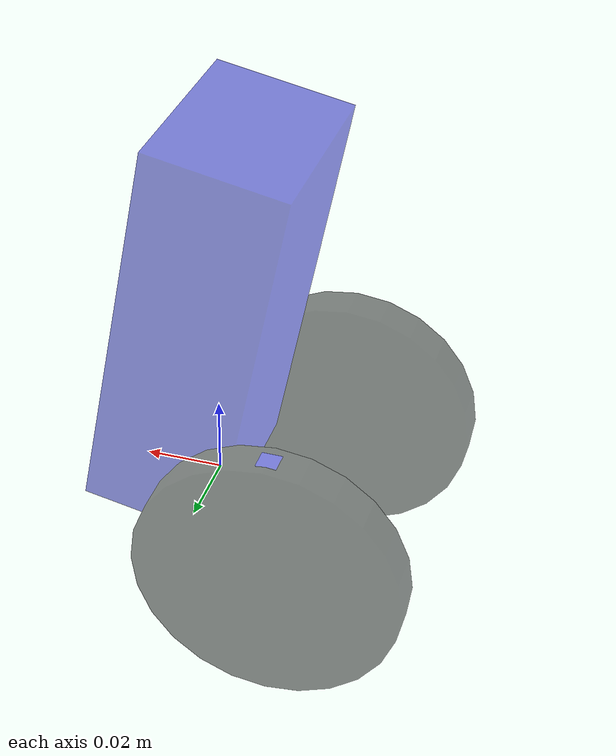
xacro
<?xml version="1.0"?>
<robot name="edumip_my_robot"  xmlns:xacro="http://www.ros.org/wiki/xacro">

  <xacro:property name="wheel_separation" value="0.070" />
  <xacro:property name="wheel_radius"     value="0.034" />
  <xacro:property name="wheel_width"      value="0.010" />
  <xacro:property name="body_height"      value="0.1"   />
  <xacro:property name="body_width"       value="0.050" />
  <xacro:property name="body_length"      value="0.035" />
  <xacro:property name="pii"              value="3.1415"/>

  <material name="blue">
    <color rgba="0 0 0.8 .5"/>
  </material>

  <material name="black">
    <color rgba="0 0 0 .5"/>
  </material>

  <link name="edumip_body">
    <visual>
      <origin xyz="0 0 ${0.5*body_height}" rpy="0 -0.20 0"/>
      <geometry>
        <box size="${body_length} ${body_width} ${body_height}"/>
      </geometry>
      <material name="blue"/>
    </visual>
  </link>

  <link name="wheelL">
    <visual>
      <origin rpy="${pii/2} 0 0" xyz="0 0 0"/>
      <geometry>
        <cylinder length="${wheel_width}" radius="${wheel_radius}"/>
      </geometry>
      <material name="black"/>
    </visual>
  </link>

  <joint name="jointL" type="continuous">
    <axis xyz="0 1 0" rpy="0 0 0" />
    <parent link="edumip_body"/>
    <child link="wheelL"/>
    <origin rpy="0 0 0" xyz="-0.025 ${wheel_separation * 0.5} 0.0"/>
  </joint>

  <link name="wheelR">
    <visual>
      <origin rpy="${pii/2} 0 0" xyz="0 0 0"/>
      <geometry>
        <cylinder length="${wheel_width}" radius="${wheel_radius}"/>
      </geometry>
      <material name="black"/>
    </visual>
  </link>

  <joint name="jointR" type="continuous">
    <axis xyz="0 1 0" rpy="0 0 0" />
    <parent link="edumip_body"/>
    <child link="wheelR"/>
    <origin rpy="0 0 0" xyz="-0.025 ${-wheel_separation * 0.5} 0.0"/>
  </joint>

  <link name="stripeL">
    <visual>
      <origin rpy="${pii/2} 0 0" xyz="0 0 0"/>
      <geometry>
        <box size="0.005 ${wheel_radius*2} 0.005"/>
      </geometry>
      <material name="blue"/>
    </visual>
  </link>

  <joint name="stripe_jointL" type="fixed">
    <axis xyz="0 1 0" rpy="0 0 0" />
    <parent link="wheelL"/>
    <child link="stripeL"/>
    <origin rpy="0 0 0" xyz="0.0 0.0 0.0"/>
  </joint>

</robot>
